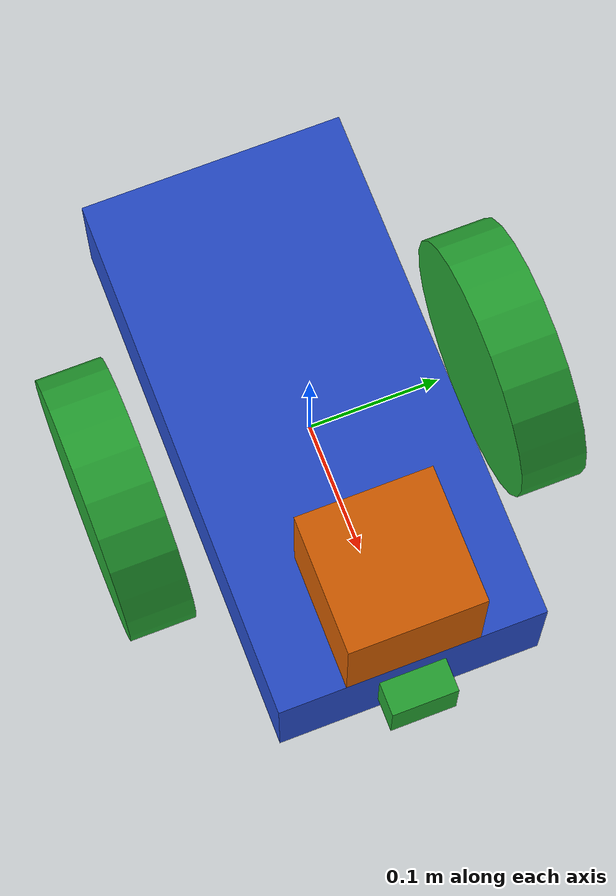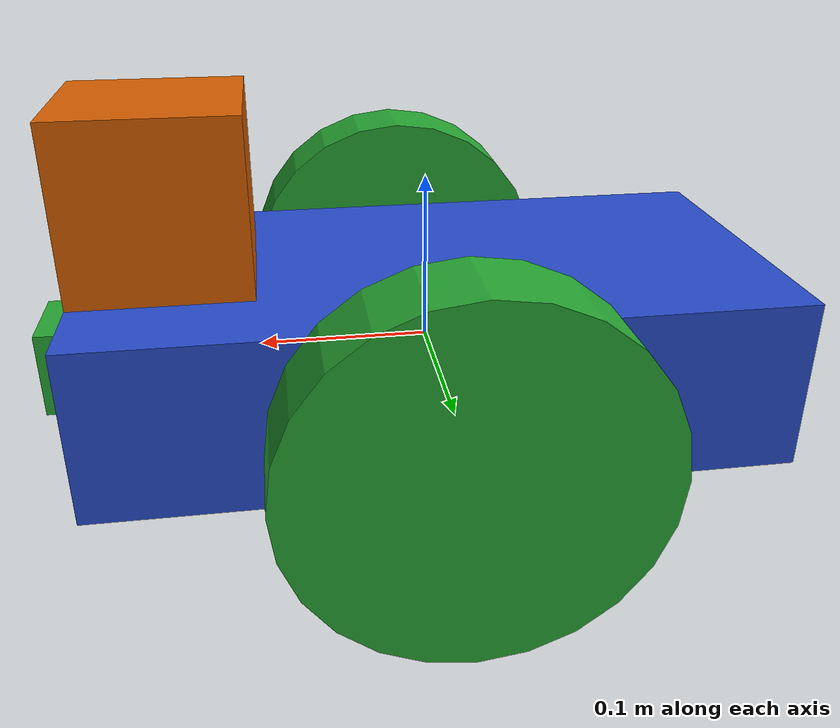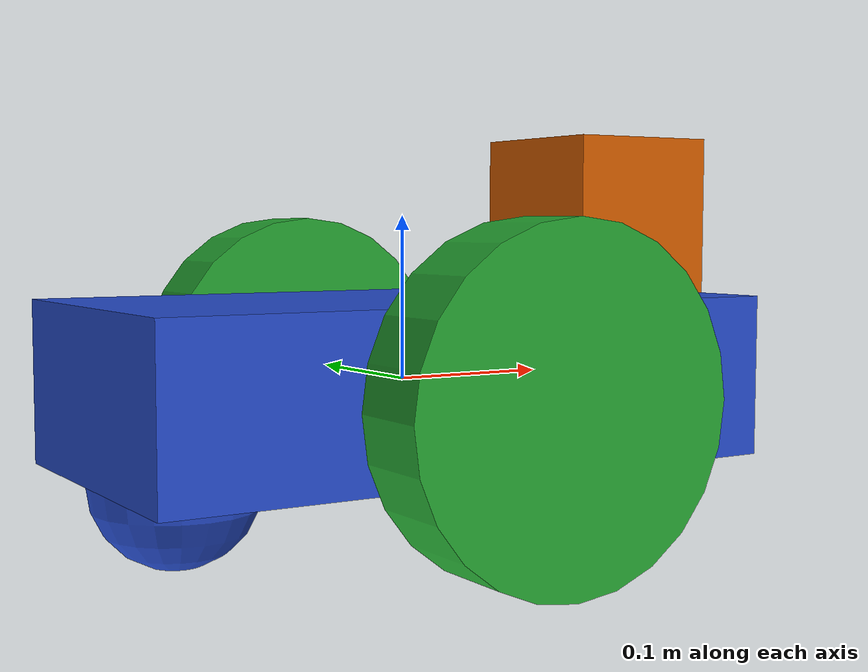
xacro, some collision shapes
<?xml version='1.0'?>

<robot name="udacity_bot" xmlns:xacro="http://www.ros.org/wiki/xacro">
  <!-- This file contains plugins for each sensor and for the differential drive controller for the robot, that are required for Gazebo -->
  <xacro:include filename="$(find udacity_bot)/urdf/udacity_bot.gazebo" />

  <!-- Wheel Properties -->
  <xacro:property name="wheel_length" value="${0.1143}" />
  <xacro:property name="wheel_radius" value="${0.1651}" />

  <link name="robot_footprint"></link>

  <joint name="robot_footprint_joint" type="fixed">
    <origin xyz="0 0 0" rpy="0 0 0" />
    <parent link="robot_footprint"/>
    <child link="chassis" />
  </joint>

  <link name='chassis'>
    <pose>0 0 0.1 0 0 0</pose>

    <inertial>
      <mass value="15.0"/>
      <origin xyz="0.0 0 0" rpy=" 0 0 0"/>
      <inertia
          ixx="0.0625" ixy="0" ixz="0"
          iyy="0.2125" iyz="0"
          izz="0.25"
      />
    </inertial>

    <collision name='collision'>
      <origin xyz="0 0 0" rpy=" 0 0 0"/>
      <geometry>
        <box size=".4 .2 .1"/>
      </geometry>
    </collision>

    <visual name='chassis_visual'>
      <origin xyz="0 0 0" rpy=" 0 0 0"/>
      <geometry>
        <box size=".4 .2 .1"/>
      </geometry>
    </visual>

    <collision name='back_caster_collision'>
      <origin xyz="-0.15 0 -0.05" rpy=" 0 0 0"/>
      <geometry>
        <sphere radius="0.05"/>
      </geometry>
      <surface>
        <friction>
          <ode>
            <mu>0</mu>
            <mu2>0</mu2>
            <slip1>1.0</slip1>
            <slip2>1.0</slip2>
          </ode>
        </friction>
      </surface>
    </collision>

    <visual name='back_caster_visual'>
      <origin xyz="-0.15 0 -0.05" rpy=" 0 0 0"/>
      <geometry>
        <sphere radius="0.05"/>
      </geometry>
    </visual>

    <collision name='front_caster_collision'>
      <origin xyz="0.15 0 -0.05" rpy=" 0 0 0"/>
      <geometry>
        <sphere radius="0.05"/>
      </geometry>
      <surface>
        <friction>
          <ode>
            <mu>0</mu>
            <mu2>0</mu2>
            <slip1>1.0</slip1>
            <slip2>1.0</slip2>
          </ode>
        </friction>
      </surface>
    </collision>

    <visual name='front_caster_visual'>
      <origin xyz="0.15 0 -0.05" rpy=" 0 0 0"/>
      <geometry>
        <sphere radius="0.05"/>
      </geometry>
    </visual>

  </link>

  <link name="left_wheel">
    <collision name="collision">
      <origin xyz="0 0 0" rpy="0 1.5707 1.5707"/>
      <geometry>
        <cylinder radius="0.1" length="0.05"/>
      </geometry>
    </collision>
    <visual name="left_wheel_visual">
      <origin xyz="0 0 0" rpy="0 1.5707 1.5707"/>
      <geometry>
        <cylinder radius="0.1" length="0.05"/>
      </geometry>
    </visual>
    <inertial>
      <!-- The formula for intertia seen here: https://en.wikipedia.org/wiki/List_of_moments_of_inertia#cite_note-serway-1  -->
      <origin xyz="0 0 0" rpy="0 1.5707 1.5707"/>
      <mass value="5"/>
      <inertia
        ixx="0.01354" ixy="0.0" ixz="0.0"
        iyy="0.025" iyz="0.0"
        izz="0.01354"/>
    </inertial>
  </link>

  <joint type="continuous" name="left_wheel_hinge">
    <origin xyz="0 0.15 -0.001" rpy="0 0 0"/>
    <child link="left_wheel"/>
    <parent link="chassis"/>
    <axis xyz="0 1 0" rpy="0 0 0"/>
    <limit lower="0" upper="0" effort="10000" velocity="1000" />
    <joint_properties damping="1.0" friction="1.0"/>
  </joint>

  <link name="right_wheel">
    <collision name="collision">
      <origin xyz="0 0 0" rpy="0 1.5707 1.5707"/>
      <geometry>
        <cylinder radius="0.1" length="0.05"/>
      </geometry>
    </collision>
    <visual name="right_wheel_visual">
      <origin xyz="0 0 0" rpy="0 1.5707 1.5707"/>
      <geometry>
        <cylinder radius="0.1" length="0.05"/>
      </geometry>
    </visual>
    <inertial>
      <origin xyz="0 0 0" rpy="0 1.5707 1.5707"/>
      <mass value="5"/>
      <inertia
        ixx="0.01354" ixy="0.0" ixz="0.0"
        iyy="0.025" iyz="0.0"
        izz="0.01354"/>
    </inertial>
  </link>

  <joint type="continuous" name="right_wheel_hinge">
    <origin xyz="0 -0.15 -0.001" rpy="0 0 0"/>
    <child link="right_wheel"/>
    <parent link="chassis"/>
    <axis xyz="0 1 0" rpy="0 0 0"/>
    <limit effort="10000" velocity="1000"/>
    <joint_properties damping="1.0" friction="1.0"/>
  </joint>

  <!-- Adding in the Camera to the bot! -->
  <xacro:property name="cameraSize" value="0.05"/>
  <xacro:property name="cameraMass" value="0.1"/>

  <!-- Camera -->
  <link name="camera">
    <collision>
      <origin xyz="0 0 0" rpy="0 0 0"/>
      <geometry>
        <box size="${cameraSize} ${cameraSize} ${cameraSize}"/>
      </geometry>
    </collision>

    <visual>
      <origin xyz="0 0 0" rpy="0 0 0"/>
      <geometry>
        <box size="${cameraSize} ${cameraSize} ${cameraSize}"/>
      </geometry>
      <material name="green"/>
    </visual>

    <inertial>
      <mass value="${cameraMass}" />
      <origin xyz="0 0 0" rpy="0 0 0"/>
      <box_inertia m="${cameraMass}" x="${cameraSize}" y="${cameraSize}" z="${cameraSize}" />
      <inertia ixx="1e-6" ixy="0" ixz="0" iyy="1e-6" iyz="0" izz="1e-6" />
    </inertial>
  </link>

  <joint name="camera_joint" type="fixed">
    <axis xyz="0 1 0" />
    <origin xyz=".2 0 0" rpy="0 0 0"/>
    <parent link="chassis"/>
    <child link="camera"/>
  </joint>

  <joint name="hokuyo_joint" type="fixed">
    <axis xyz="0 1 0" />
    <origin xyz=".15 0 .1" rpy="0 0 0"/>
    <parent link="chassis"/>
    <child link="hokuyo"/>
  </joint>
  <!-- Hokuyo Laser -->
  <link name="hokuyo">
    <collision>
      <origin xyz="0 0 0" rpy="0 0 0"/>
      <geometry>
          <box size="0.1 0.1 0.1"/>
      </geometry>
    </collision>

    <visual>
      <origin xyz="0 0 0" rpy="0 0 0"/>
      <geometry>
          <mesh filename="package://udacity_bot/meshes/hokuyo.dae"/>
      </geometry>
    </visual>

    <inertial>
      <mass value="1e-5" />
      <origin xyz="0 0 0" rpy="0 0 0"/>
      <inertia ixx="1e-6" ixy="0" ixz="0" iyy="1e-6" iyz="0" izz="1e-6" />
    </inertial>
  </link>

</robot>
